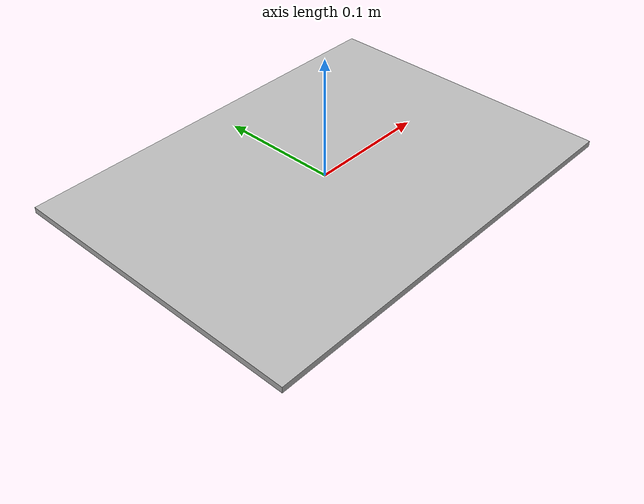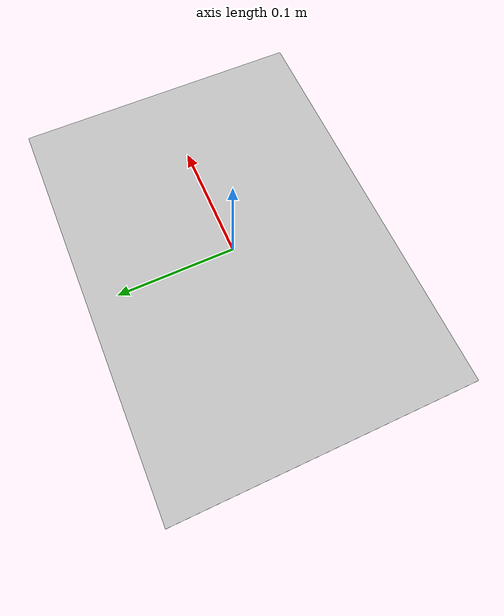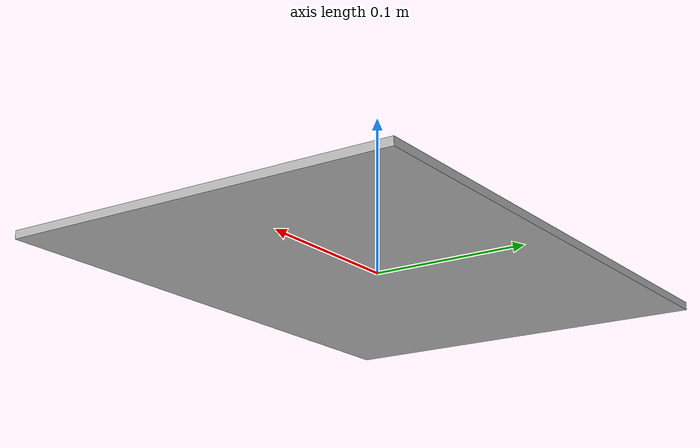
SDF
<?xml version="1.0" ?>
<sdf version="1.5">
  <model name="parked_car_1">
    <static>true</static>
    <link name="link">
      <visual name="visual">
        <geometry>
          <mesh>
            <uri>model://parked_car_1/meshes/car.dae</uri>
          </mesh>
        </geometry>
      </visual>
    </link>
  </model>
</sdf>
